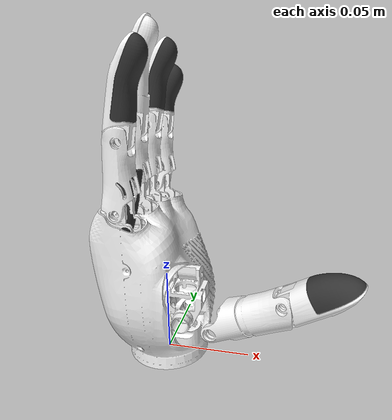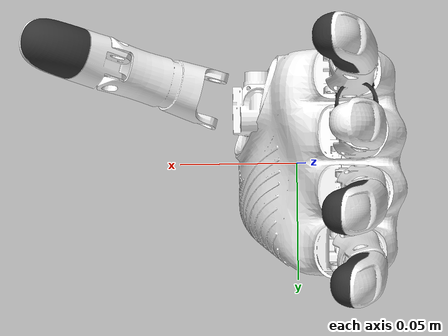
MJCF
<?xml version="1.0" encoding="utf-8"?>
<!--
  MuJoCo MJCF model for DH116-L000-A1 Dexterous Hand (Left)
  ============================================================
  Converted from the DH116 URDF package and README formulas.
-->

<mujoco model="DH116-L000-A1">

  <compiler angle="radian" meshdir="../meshes" eulerseq="XYZ" autolimits="true"/>
  <option gravity="0 0 -9.81" timestep="0.002" iterations="100"/>

  <default>
    <joint type="hinge" damping="2.0" armature="0.01" frictionloss="0"/>
    <geom condim="4" friction="1.0 0.005 0.001" contype="0" conaffinity="0"/>
    <equality solref="0.004 1" solimp="0.9 0.99 0.001 0.5 2"/>
  </default>

  <asset>
    <mesh name="base_link" file="base_link.STL"/>
    <mesh name="finger11_link" file="finger11_link.STL"/>
    <mesh name="finger12_link" file="finger12_link.STL"/>
    <mesh name="finger13_link" file="finger13_link.STL"/>
    <mesh name="finger14_link" file="finger14_link.STL"/>
    <mesh name="finger21_link" file="finger21_link.STL"/>
    <mesh name="finger22_link" file="finger22_link.STL"/>
    <mesh name="finger23_link" file="finger23_link.STL"/>
    <mesh name="finger31_link" file="finger31_link.STL"/>
    <mesh name="finger32_link" file="finger32_link.STL"/>
    <mesh name="finger33_link" file="finger33_link.STL"/>
    <mesh name="finger41_link" file="finger41_link.STL"/>
    <mesh name="finger42_link" file="finger42_link.STL"/>
    <mesh name="finger43_link" file="finger43_link.STL"/>
    <mesh name="finger51_link" file="finger51_link.STL"/>
    <mesh name="finger52_link" file="finger52_link.STL"/>
    <mesh name="finger53_link" file="finger53_link.STL"/>
  </asset>

  <worldbody>

    <body name="base_link" pos="0 0 0">
      <geom name="base_link" type="mesh" mesh="base_link" rgba="1 1 1 1"/>
      <inertial pos="-0.004908 -0.0023087 0.053425"
                mass="0.11674"
                fullinertia="8.8343E-05 5.7065E-05 4.4559E-05 -1.5779E-07 2.7103E-06 4.0956E-07"/>

      <!-- ===== 手指 1：大拇指 (Thumb) ===== -->
      <body name="finger11_link"
            pos="0.018 -0.021464 0.040041"
            euler="0.087266 0 0">
        <joint name="finger11" axis="0 0 1" range="0 1.047198"/>
        <geom name="finger11_link" type="mesh" mesh="finger11_link" rgba="1 1 1 1"/>
        <inertial pos="0.0078225 -0.0020462 0.00068777"
                  mass="0.010254"
                  fullinertia="7.2141E-07 1.1141E-06 1.144E-06 1.1025E-07 1.8578E-07 -4.8596E-08"/>
        <body name="finger12_link"
              pos="0.018876 -0.0049375 -0.0023593"
              euler="0 0.95149 -0.25585">
          <joint name="finger12" axis="0 -1 0" range="0 0.523599"/>
          <geom name="finger12_link" type="mesh" mesh="finger12_link" rgba="1 1 1 1"/>
          <inertial pos="0.001442 5.4239E-07 0.024371"
                    mass="0.010117"
                    fullinertia="2.4721E-06 2.2849E-06 8.8673E-07 3.5819E-11 -8.7771E-08 1.0447E-12"/>
          <body name="finger13_link"
                pos="0 0 0.045"
                euler="0 0 0">
            <joint name="finger13" axis="0 -1 0" range="0.004592 0.594583"/>
            <geom name="finger13_link" type="mesh" mesh="finger13_link" rgba="1 1 1 1" contype="1" conaffinity="1"/>
            <inertial pos="0.0064864 1.9023E-06 0.014709"
                      mass="0.020548"
                      fullinertia="2.4642E-06 2.3554E-06 8.7678E-07 -1.8605E-10 -1.2758E-07 -2.9766E-10"/>
            <body name="finger14_link"
                  pos="0 0 0"
                  euler="0 0 0">
              <geom name="finger14_link" type="mesh" mesh="finger14_link" rgba="0.2 0.2 0.2 1" contype="1" conaffinity="1"/>
              <inertial pos="0.0030983 6.4415E-07 0.024752"
                        mass="0.00063385"
                        fullinertia="4.5297E-08 3.0365E-08 3.2628E-08 -1.7549E-11 -6.8692E-09 3.6154E-12"/>
            </body>
          </body>
        </body>
      </body>

      <!-- ===== 手指 2：食指 (Index) ===== -->
      <body name="finger21_link"
            pos="-0.011581 -0.031971 0.10003"
            euler="0.052657 0.10625 0.0055894">
        <joint name="finger21" axis="0 1 0" range="0 1.396263"/>
        <geom name="finger21_link" type="mesh" mesh="finger21_link" rgba="1 1 1 1"/>
        <inertial pos="-0.0017977 4.517E-07 0.018685"
                  mass="0.0067138"
                  fullinertia="1.195E-06 1.0687E-06 3.7302E-07 4.4817E-12 -4.5105E-09 1.3869E-11"/>
        <body name="finger22_link"
              pos="0 0 0.035"
              euler="0 0 0">
          <joint name="finger22" axis="0 1 0" range="0.011072 1.687426"/>
          <geom name="finger22_link" type="mesh" mesh="finger22_link" rgba="1 1 1 1" contype="1" conaffinity="1"/>
          <inertial pos="-0.001934 -4.4573E-07 0.02175"
                    mass="0.014791"
                    fullinertia="1.4669E-06 1.4892E-06 3.5283E-07 -1.8909E-11 -1.6607E-07 5.6761E-11"/>
          <body name="finger23_link"
                pos="0 0 0"
                euler="0 0 0">
            <geom name="finger23_link" type="mesh" mesh="finger23_link" rgba="0.2 0.2 0.2 1" contype="1" conaffinity="1"/>
            <inertial pos="0.0027522 -5.9223E-07 0.027469"
                      mass="0.00081811"
                      fullinertia="1.0639E-07 9.4373E-08 2.3583E-08 -3.5393E-13 -9.0804E-09 7.1781E-12"/>
          </body>
        </body>
      </body>

      <!-- ===== 手指 3：中指 (Middle) ===== -->
      <body name="finger31_link"
            pos="-0.013501 -0.0105 0.10286"
            euler="0 0.10214 0">
        <joint name="finger31" axis="0 1 0" range="0 1.396263"/>
        <geom name="finger31_link" type="mesh" mesh="finger31_link" rgba="1 1 1 1"/>
        <inertial pos="-0.0017977 3.6375E-07 0.018685"
                  mass="0.0067137"
                  fullinertia="1.195E-06 1.0687E-06 3.7302E-07 7.1207E-12 -4.5072E-09 1.6816E-11"/>
        <body name="finger32_link"
              pos="0 0 0.035"
              euler="0 0 0">
          <joint name="finger32" axis="0 1 0" range="0.011072 1.687426"/>
          <geom name="finger32_link" type="mesh" mesh="finger32_link" rgba="1 1 1 1" contype="1" conaffinity="1"/>
          <inertial pos="-0.0021235 -2.8524E-07 0.024937"
                    mass="0.017437"
                    fullinertia="4.1693E-06 4.1909E-06 4.4314E-07 -2.5515E-11 -2.6509E-07 9.5471E-11"/>
          <body name="finger33_link"
                pos="0 0 0"
                euler="0 0 0">
            <geom name="finger33_link" type="mesh" mesh="finger33_link" rgba="0.2 0.2 0.2 1" contype="1" conaffinity="1"/>
            <inertial pos="7.153E-07 -0.0067137 -0.037473"
                      mass="0.00081807"
                      fullinertia="9.4367E-08 1.0642E-07 2.3554E-08 7.2819E-13 7.4794E-12 -8.9658E-09"/>
          </body>
        </body>
      </body>

      <!-- ===== 手指 4：无名指 (Ring) ===== -->
      <body name="finger41_link"
            pos="-0.015081 0.010971 0.10183"
            euler="-0.052889 0.14148 -0.0074648">
        <joint name="finger41" axis="0 1 0" range="0 1.396263"/>
        <geom name="finger41_link" type="mesh" mesh="finger41_link" rgba="1 1 1 1"/>
        <inertial pos="-0.0017978 4.6307E-07 0.018685"
                  mass="0.0067137"
                  fullinertia="1.195E-06 1.0687E-06 3.7301E-07 -3.5541E-12 -4.505E-09 6.8595E-13"/>
        <body name="finger42_link"
              pos="0 0 0.035"
              euler="0 0 0">
          <joint name="finger42" axis="0 1 0" range="0.011072 1.687426"/>
          <geom name="finger42_link" type="mesh" mesh="finger42_link" rgba="1 1 1 1" contype="1" conaffinity="1"/>
          <inertial pos="-0.00099518 -3.8607E-07 0.021813"
                    mass="0.014791"
                    fullinertia="1.4505E-06 1.4892E-06 3.692E-07 -2.9273E-11 -2.1339E-07 6.1801E-11"/>
          <body name="finger43_link"
                pos="0 0 0"
                euler="0 0 0">
            <geom name="finger43_link" type="mesh" mesh="finger43_link" rgba="0.2 0.2 0.2 1" contype="1" conaffinity="1"/>
            <inertial pos="0.0039329 -6.1523E-07 0.027325"
                      mass="0.00081812"
                      fullinertia="1.0545E-07 9.4369E-08 2.452E-08 -2.6832E-13 -1.261E-08 6.0613E-12"/>
          </body>
        </body>
      </body>

      <!-- ===== 手指 5：小拇指 (Pinky) ===== -->
      <body name="finger51_link"
            pos="-0.013081 0.032156 0.097798"
            euler="-0.078754 0.073706 -0.0058113">
        <joint name="finger51" axis="0 1 0" range="0 1.396263"/>
        <geom name="finger51_link" type="mesh" mesh="finger51_link" rgba="1 1 1 1"/>
        <inertial pos="-0.0017977 3.5129E-07 0.018685"
                  mass="0.0067139"
                  fullinertia="1.195E-06 1.0687E-06 3.7302E-07 2.1372E-12 -4.5117E-09 5.8565E-12"/>
        <body name="finger52_link"
              pos="0 0 0.035"
              euler="0 0 0">
          <joint name="finger52" axis="0 1 0" range="0.011072 1.687426"/>
          <geom name="finger52_link" type="mesh" mesh="finger52_link" rgba="1 1 1 1" contype="1" conaffinity="1"/>
          <inertial pos="-0.0024418 -8.1825E-07 0.016654"
                    mass="0.010439"
                    fullinertia="1.3354E-06 1.3473E-06 2.4653E-07 -3.1558E-11 -1.1834E-07 7.0815E-11"/>
          <body name="finger53_link"
                pos="0 0 0"
                euler="0 0 0">
            <geom name="finger53_link" type="mesh" mesh="finger53_link" rgba="0.2 0.2 0.2 1" contype="1" conaffinity="1"/>
            <inertial pos="0.0021844 1.1224E-06 0.022782"
                      mass="0.00058044"
                      fullinertia="4.4456E-08 3.5896E-08 1.5583E-08 1.8383E-12 -3.5021E-09 -1.5936E-12"/>
          </body>
        </body>
      </body>
    </body>

  </worldbody>

  <equality>
    <joint name="eq_thumb" joint1="finger13" joint2="finger12"
           polycoef="0.004592 0.8808 0.469825 0 0"/>
    <joint name="eq_index" joint1="finger22" joint2="finger21"
           polycoef="0.011072 0.9206 0.200535 0 0"/>
    <joint name="eq_middle" joint1="finger32" joint2="finger31"
           polycoef="0.011072 0.9206 0.200535 0 0"/>
    <joint name="eq_ring" joint1="finger42" joint2="finger41"
           polycoef="0.011072 0.9206 0.200535 0 0"/>
    <joint name="eq_pinky" joint1="finger52" joint2="finger51"
           polycoef="0.011072 0.9206 0.200535 0 0"/>
  </equality>

  <actuator>
    <position name="act_finger11" joint="finger11" kp="50" kv="2.0" ctrlrange="0 1.047198"/>
    <position name="act_finger12" joint="finger12" kp="50" kv="2.0" ctrlrange="0 0.523599"/>
    <position name="act_finger21" joint="finger21" kp="50" kv="2.0" ctrlrange="0 1.396263"/>
    <position name="act_finger31" joint="finger31" kp="50" kv="2.0" ctrlrange="0 1.396263"/>
    <position name="act_finger41" joint="finger41" kp="50" kv="2.0" ctrlrange="0 1.396263"/>
    <position name="act_finger51" joint="finger51" kp="50" kv="2.0" ctrlrange="0 1.396263"/>
  </actuator>

</mujoco>
